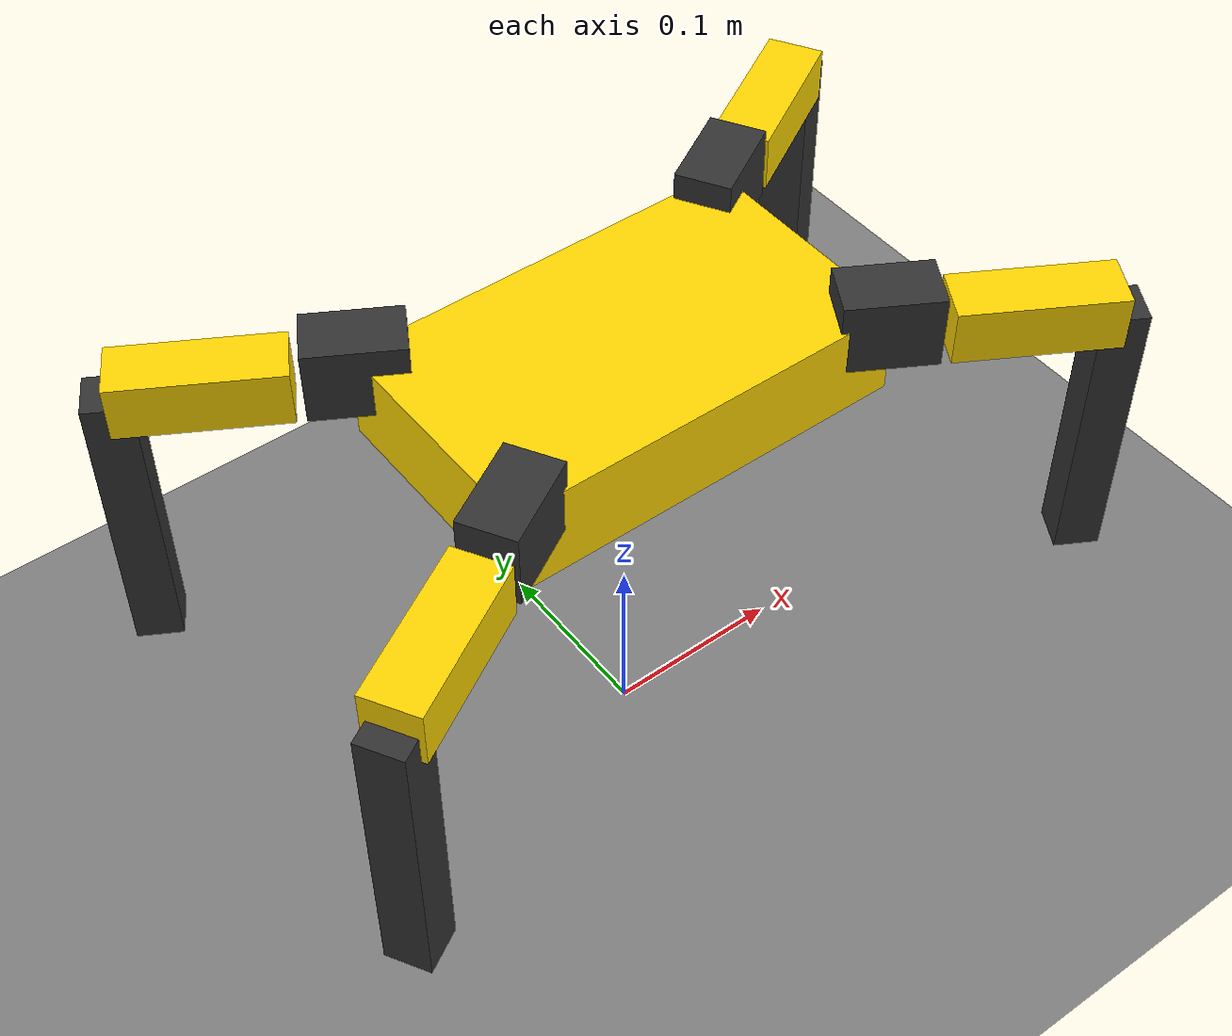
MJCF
<mujoco model="spiderbot">
  <compiler angle="radian" autolimits="true"/>

  <!--
    timestep=0.005 è buono per gait learning.
    solver CG + iterations basse = ottimizzato per MJX (JAX GPU).
  -->
  <option gravity="0 0 -9.81" timestep="0.005" solver="CG" iterations="6" ls_iterations="6"/>

  <default>
    <joint armature="0.01" damping="0.5" frictionloss="0.0"/>
    <geom condim="3" friction="0.8 0.1 0.1"/>
    <position kp="15" forcerange="-10 10"/>
  </default>

  <worldbody>
    <light pos="0 0 3" dir="0 0 -1" diffuse="1 1 1"/>
    <!-- Piano di collisione: INDISPENSABILE, mancava nel URDF originale -->
    <geom name="floor" type="plane" size="10 10 0.1" rgba="0.5 0.5 0.5 1" condim="3"/>

    <body name="torso" pos="0 0 0.25">
      <freejoint name="root"/>
      <inertial pos="0 0 0" mass="1.42" diaginertia="0.0045 0.0045 0.009"/>
      <geom name="torso_box" size="0.11 0.065 0.025" type="box" rgba="1 0.84 0 1"/>

      <!-- FR: Front-Right -->
      <body name="FR_leg_a" pos="0.1083 0.0625 0.02" quat="0.866025 0 0 -0.500001">
        <inertial pos="0.02 0 0" mass="0.175" diaginertia="0.00012 0.00012 8e-05"/>
        <joint name="FR_coxa_joint" axis="0 0 1" range="-1.5708 1.5708"/>
        <geom size="0.025 0.015 0.02" quat="0.707105 0 0 0.707108" type="box" rgba="0.2 0.2 0.2 1"/>
        <body name="FR_leg_b" pos="0 0.03 -0.005" quat="1.32679e-06 0 0 1">
          <inertial pos="0 -0.016 0" mass="0.205" diaginertia="0.00035 0.00035 9e-05"/>
          <joint name="FR_femur_joint" axis="1 0 0" range="-1.5708 1.5708"/>
          <geom size="0.015 0.015 0.0425" pos="0 -0.0425 0" quat="0.707105 0.707108 0 0" type="box" rgba="1 0.84 0 1"/>
          <body name="FR_leg_c" pos="0 -0.085 0" quat="0.707105 0 0 0.707108">
            <inertial pos="0.08 0 -0.08" mass="0.18" diaginertia="0.0006 0.0006 5e-05"/>
            <joint name="FR_tibia_joint" axis="0 1 0" range="-1.5708 1.5708"/>
            <geom size="0.012 0.012 0.08" pos="0 0 -0.08" type="box" rgba="0.2 0.2 0.2 1"/>
          </body>
        </body>
      </body>

      <!-- FL: Front-Left -->
      <body name="FL_leg_a" pos="-0.1083 0.0625 0.02" quat="0.866025 0 0 0.500001">
        <inertial pos="0.02 0 0" mass="0.175" diaginertia="0.00012 0.00012 8e-05"/>
        <joint name="FL_coxa_joint" axis="0 0 1" range="-1.5708 1.5708"/>
        <geom size="0.025 0.015 0.02" quat="0.707105 0 0 0.707108" type="box" rgba="0.2 0.2 0.2 1"/>
        <body name="FL_leg_b" pos="0 0.03 -0.005" quat="1.32679e-06 0 0 1">
          <inertial pos="0 -0.016 0" mass="0.205" diaginertia="0.00035 0.00035 9e-05"/>
          <joint name="FL_femur_joint" axis="1 0 0" range="-1.5708 1.5708"/>
          <geom size="0.015 0.015 0.0425" pos="0 -0.0425 0" quat="0.707105 0.707108 0 0" type="box" rgba="1 0.84 0 1"/>
          <body name="FL_leg_c" pos="0 -0.085 0" quat="0.707105 0 0 0.707108">
            <inertial pos="0 0 -0.08" mass="0.18" diaginertia="0.0006 0.0006 5e-05"/>
            <joint name="FL_tibia_joint" axis="0 1 0" range="-1.5708 1.5708"/>
            <geom size="0.012 0.012 0.08" pos="0 0 -0.08" type="box" rgba="0.2 0.2 0.2 1"/>
          </body>
        </body>
      </body>

      <!-- RL: Rear-Left -->
      <body name="RL_leg_a" pos="-0.1083 -0.0625 0.02" quat="0.499998 0 0 0.866027">
        <inertial pos="0.02 0 0" mass="0.175" diaginertia="0.00012 0.00012 8e-05"/>
        <joint name="RL_coxa_joint" axis="0 0 1" range="-1.5708 1.5708"/>
        <geom size="0.025 0.015 0.02" quat="0.707105 0 0 0.707108" type="box" rgba="0.2 0.2 0.2 1"/>
        <body name="RL_leg_b" pos="0 0.03 -0.005" quat="1.32679e-06 0 0 1">
          <inertial pos="0 -0.016 0" mass="0.205" diaginertia="0.00035 0.00035 9e-05"/>
          <joint name="RL_femur_joint" axis="1 0 0" range="-1.5708 1.5708"/>
          <geom size="0.015 0.015 0.0425" pos="0 -0.0425 0" quat="0.707105 0.707108 0 0" type="box" rgba="1 0.84 0 1"/>
          <body name="RL_leg_c" pos="0 -0.085 0" quat="0.707105 0 0 0.707108">
            <inertial pos="0 0 -0.08" mass="0.18" diaginertia="0.0006 0.0006 5e-05"/>
            <joint name="RL_tibia_joint" axis="0 1 0" range="-1.5708 1.5708"/>
            <geom size="0.012 0.012 0.08" pos="0 0 -0.08" type="box" rgba="0.2 0.2 0.2 1"/>
          </body>
        </body>
      </body>

      <!-- RR: Rear-Right -->
      <body name="RR_leg_a" pos="0.1083 -0.0625 0.02" quat="0.499998 0 0 -0.866027">
        <inertial pos="0.02 0 0" mass="0.175" diaginertia="0.00012 0.00012 8e-05"/>
        <joint name="RR_coxa_joint" axis="0 0 1" range="-1.5708 1.5708"/>
        <geom size="0.025 0.015 0.02" quat="0.707105 0 0 0.707108" type="box" rgba="0.2 0.2 0.2 1"/>
        <body name="RR_leg_b" pos="0 0.03 -0.005" quat="1.32679e-06 0 0 1">
          <inertial pos="0 -0.016 0" mass="0.205" diaginertia="0.00035 0.00035 9e-05"/>
          <joint name="RR_femur_joint" axis="1 0 0" range="-1.5708 1.5708"/>
          <geom size="0.015 0.015 0.0425" pos="0 -0.0425 0" quat="0.707105 0.707108 0 0" type="box" rgba="1 0.84 0 1"/>
          <body name="RR_leg_c" pos="0 -0.085 0" quat="0.707105 0 0 0.707108">
            <inertial pos="0 0 -0.08" mass="0.18" diaginertia="0.0006 0.0006 5e-05"/>
            <joint name="RR_tibia_joint" axis="0 1 0" range="-1.5708 1.5708"/>
            <geom size="0.012 0.012 0.08" pos="0 0 -0.08" type="box" rgba="0.2 0.2 0.2 1"/>
          </body>
        </body>
      </body>

    </body>
  </worldbody>

  <!--
    Attuatori position-control (PD) su tutti e 12 i giunti.
    kp=15 dal default, forcerange=[-10,10] N·m.
    Ordine: FR, FL, RL, RR  (coxa, femur, tibia per ognuna) = 12 attuatori
  -->
  <actuator>
    <position name="FR_coxa_motor"  joint="FR_coxa_joint"  ctrlrange="-1.5708 1.5708"/>
    <position name="FR_femur_motor" joint="FR_femur_joint" ctrlrange="-1.5708 1.5708"/>
    <position name="FR_tibia_motor" joint="FR_tibia_joint" ctrlrange="-1.5708 1.5708"/>
    <position name="FL_coxa_motor"  joint="FL_coxa_joint"  ctrlrange="-1.5708 1.5708"/>
    <position name="FL_femur_motor" joint="FL_femur_joint" ctrlrange="-1.5708 1.5708"/>
    <position name="FL_tibia_motor" joint="FL_tibia_joint" ctrlrange="-1.5708 1.5708"/>
    <position name="RL_coxa_motor"  joint="RL_coxa_joint"  ctrlrange="-1.5708 1.5708"/>
    <position name="RL_femur_motor" joint="RL_femur_joint" ctrlrange="-1.5708 1.5708"/>
    <position name="RL_tibia_motor" joint="RL_tibia_joint" ctrlrange="-1.5708 1.5708"/>
    <position name="RR_coxa_motor"  joint="RR_coxa_joint"  ctrlrange="-1.5708 1.5708"/>
    <position name="RR_femur_motor" joint="RR_femur_joint" ctrlrange="-1.5708 1.5708"/>
    <position name="RR_tibia_motor" joint="RR_tibia_joint" ctrlrange="-1.5708 1.5708"/>
  </actuator>

</mujoco>
